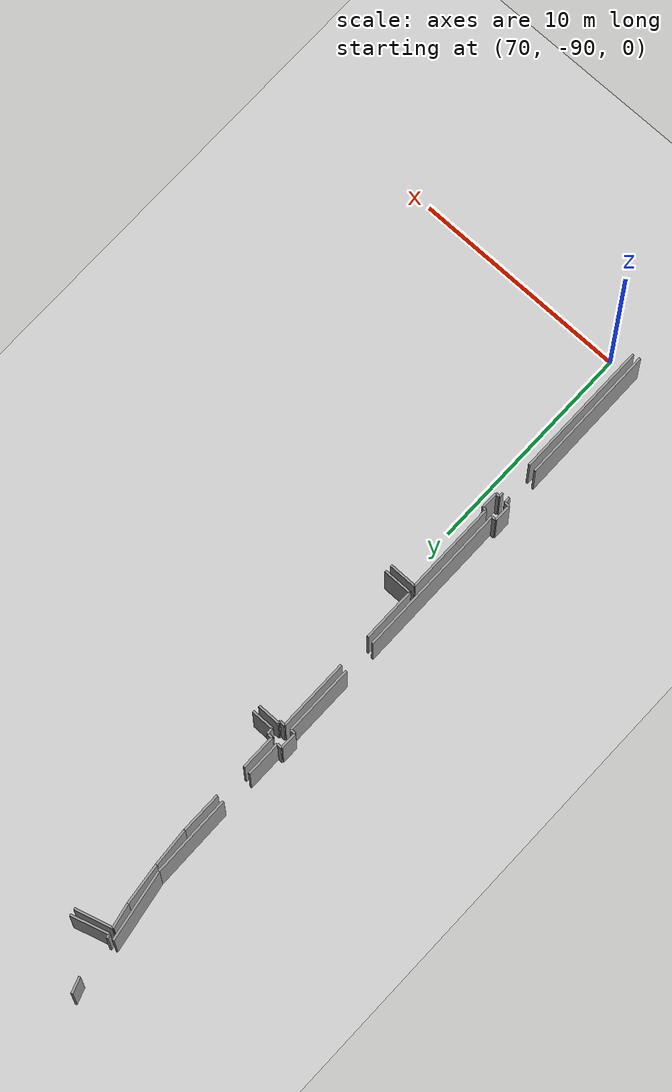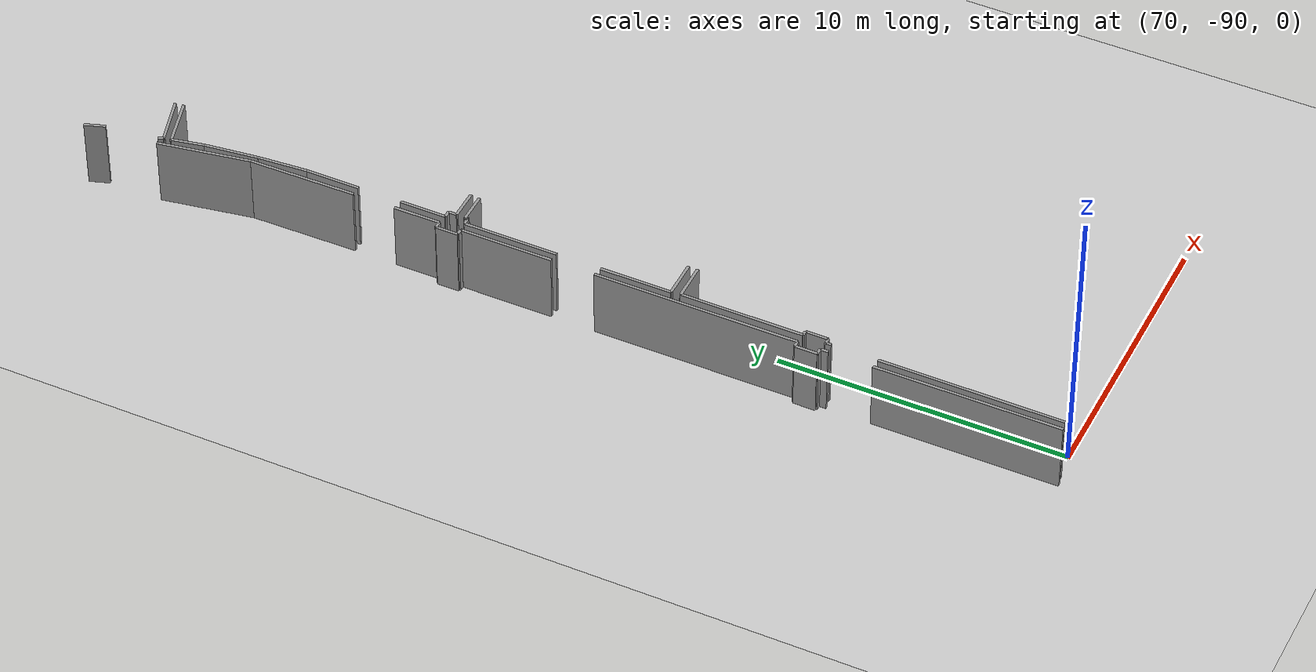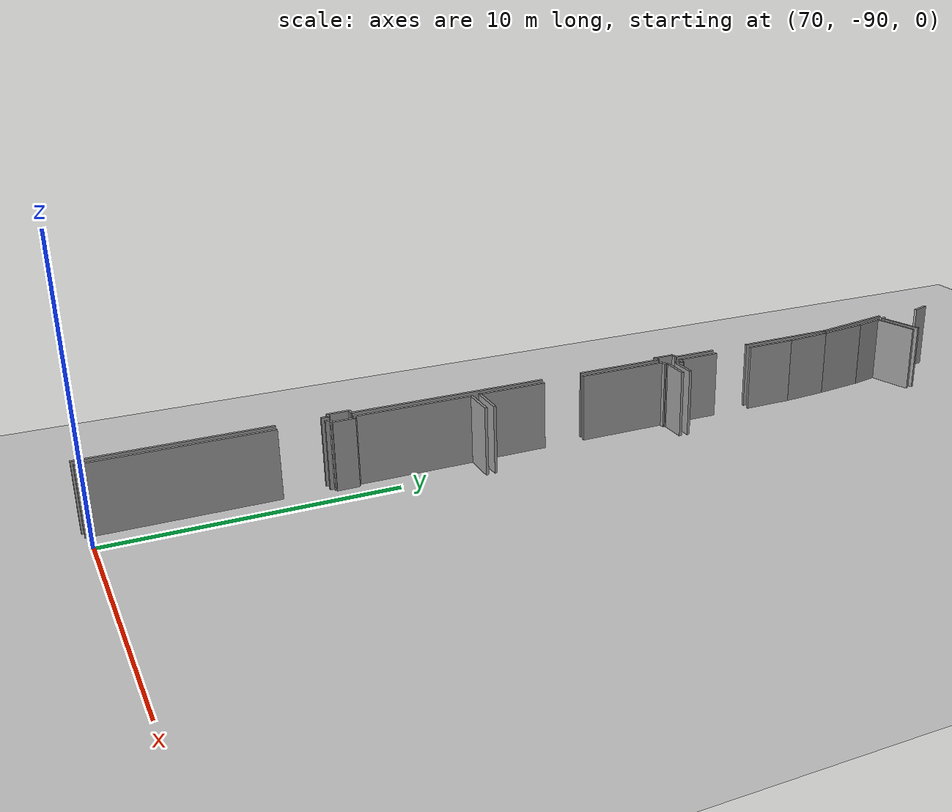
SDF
<sdf version="1.6">
 <world name="default">
  <model name="ground_plane">
   <static>1</static>
   <link name="link">
    <collision name="collision">
     <geometry><plane><normal>0 0 1</normal><size>100 100</size></plane></geometry>
     <surface><friction><ode><mu>100</mu><mu2>50</mu2></ode></friction></surface>
    </collision>
    <visual name="visual">
     <cast_shadows>0</cast_shadows>
     <geometry><plane><normal>0 0 1</normal><size>100 100</size></plane></geometry>
     <material>
      <script><uri>file://media/materials/scripts/gazebo.material</uri><name>Gazebo/Grey</name></script>
     </material>
    </visual>
   </link>
  </model>
  <model name="0510045926_A-40">
   <static>1</static>
   <link name="Wall_2115">
    <collision name="Wall_2115_Collision">
     <geometry><box><size>1.71210458438 0.1 2.5</size></box></geometry>
     <pose>0.856052292188 0 1.25 0 0 0</pose>
    </collision>
    <visual name="Wall_2115_Visual">
     <pose>0.856052292188 0 1.25 0 0 0</pose>
     <geometry><box><size>1.71210458438 0.1 2.5</size></box></geometry>
     <material>
      <script><uri>file://media/materials/scripts/gazebo.material</uri><name>Gazebo/Grey</name></script>
      <ambient>1 1 1 1</ambient>
     </material>
    </visual>
    <pose>204.050969965 -159.241593319 0 0 0 -2.85665398657</pose>
   </link>
   <link name="Wall_2116">
    <collision name="Wall_2116_Collision">
     <geometry><box><size>0.194159656876 0.1 2.5</size></box></geometry>
     <pose>0.097079828438 0 1.25 0 0 0</pose>
    </collision>
    <visual name="Wall_2116_Visual">
     <pose>0.097079828438 0 1.25 0 0 0</pose>
     <geometry><box><size>0.194159656876 0.1 2.5</size></box></geometry>
     <material>
      <script><uri>file://media/materials/scripts/gazebo.material</uri><name>Gazebo/Grey</name></script>
      <ambient>1 1 1 1</ambient>
     </material>
    </visual>
    <pose>202.407899329 -159.722863507 0 0 0 1.91900885842</pose>
   </link>
   <link name="Wall_2119">
    <collision name="Wall_2119_Collision">
     <geometry><box><size>0.730550339083 0.1 2.5</size></box></geometry>
     <pose>0.365275169542 0 1.25 0 0 0</pose>
    </collision>
    <visual name="Wall_2119_Visual">
     <pose>0.365275169542 0 1.25 0 0 0</pose>
     <geometry><box><size>0.730550339083 0.1 2.5</size></box></geometry>
     <material>
      <script><uri>file://media/materials/scripts/gazebo.material</uri><name>Gazebo/Grey</name></script>
      <ambient>1 1 1 1</ambient>
     </material>
    </visual>
    <pose>202.098728924 -157.730770451 0 0 0 1.89946908685</pose>
   </link>
   <link name="Wall_2136">
    <collision name="Wall_2136_Collision">
     <geometry><box><size>1.0290450112 0.1 2.5</size></box></geometry>
     <pose>0.5145225056 0 1.25 0 0 0</pose>
    </collision>
    <visual name="Wall_2136_Visual">
     <pose>0.5145225056 0 1.25 0 0 0</pose>
     <geometry><box><size>1.0290450112 0.1 2.5</size></box></geometry>
     <material>
      <script><uri>file://media/materials/scripts/gazebo.material</uri><name>Gazebo/Grey</name></script>
      <ambient>1 1 1 1</ambient>
     </material>
    </visual>
    <pose>204.316480839 -170.009252267 0 0 0 3.14159265359</pose>
   </link>
   <link name="Wall_2137">
    <collision name="Wall_2137_Collision">
     <geometry><box><size>0.287340639536 0.1 2.5</size></box></geometry>
     <pose>0.143670319768 0 1.25 0 0 0</pose>
    </collision>
    <visual name="Wall_2137_Visual">
     <pose>0.143670319768 0 1.25 0 0 0</pose>
     <geometry><box><size>0.287340639536 0.1 2.5</size></box></geometry>
     <material>
      <script><uri>file://media/materials/scripts/gazebo.material</uri><name>Gazebo/Grey</name></script>
      <ambient>1 1 1 1</ambient>
     </material>
    </visual>
    <pose>203.287435827 -170.009252267 0 0 0 1.57079632679</pose>
   </link>
   <link name="Wall_2138">
    <collision name="Wall_2138_Collision">
     <geometry><box><size>0.240635093887 0.1 2.5</size></box></geometry>
     <pose>0.120317546944 0 1.25 0 0 0</pose>
    </collision>
    <visual name="Wall_2138_Visual">
     <pose>0.120317546944 0 1.25 0 0 0</pose>
     <geometry><box><size>0.240635093887 0.1 2.5</size></box></geometry>
     <material>
      <script><uri>file://media/materials/scripts/gazebo.material</uri><name>Gazebo/Grey</name></script>
      <ambient>1 1 1 1</ambient>
     </material>
    </visual>
    <pose>203.287435827 -169.721911628 0 0 0 3.14159265359</pose>
   </link>
   <link name="Wall_2139">
    <collision name="Wall_2139_Collision">
     <geometry><box><size>1.61819485604 0.1 2.5</size></box></geometry>
     <pose>0.809097428022 0 1.25 0 0 0</pose>
    </collision>
    <visual name="Wall_2139_Visual">
     <pose>0.809097428022 0 1.25 0 0 0</pose>
     <geometry><box><size>1.61819485604 0.1 2.5</size></box></geometry>
     <material>
      <script><uri>file://media/materials/scripts/gazebo.material</uri><name>Gazebo/Grey</name></script>
      <ambient>1 1 1 1</ambient>
     </material>
    </visual>
    <pose>203.046800734 -169.721911628 0 0 0 1.57079632679</pose>
   </link>
   <link name="Wall_2140">
    <collision name="Wall_2140_Collision">
     <geometry><box><size>1.87964437788 0.1 2.5</size></box></geometry>
     <pose>0.939822188942 0 1.25 0 0 0</pose>
    </collision>
    <visual name="Wall_2140_Visual">
     <pose>0.939822188942 0 1.25 0 0 0</pose>
     <geometry><box><size>1.87964437788 0.1 2.5</size></box></geometry>
     <material>
      <script><uri>file://media/materials/scripts/gazebo.material</uri><name>Gazebo/Grey</name></script>
      <ambient>1 1 1 1</ambient>
     </material>
    </visual>
    <pose>203.046800734 -166.5700488 0 0 0 1.57079632679</pose>
   </link>
   <link name="Wall_2141">
    <collision name="Wall_2141_Collision">
     <geometry><box><size>1.73860062575 0.1 2.5</size></box></geometry>
     <pose>0.869300312873 0 1.25 0 0 0</pose>
    </collision>
    <visual name="Wall_2141_Visual">
     <pose>0.869300312873 0 1.25 0 0 0</pose>
     <geometry><box><size>1.73860062575 0.1 2.5</size></box></geometry>
     <material>
      <script><uri>file://media/materials/scripts/gazebo.material</uri><name>Gazebo/Grey</name></script>
      <ambient>1 1 1 1</ambient>
     </material>
    </visual>
    <pose>203.046800734 -164.690404422 0 0 0 1.64400736238</pose>
   </link>
   <link name="Wall_2142">
    <collision name="Wall_2142_Collision">
     <geometry><box><size>1.89069914068 0.1 2.5</size></box></geometry>
     <pose>0.945349570341 0 1.25 0 0 0</pose>
    </collision>
    <visual name="Wall_2142_Visual">
     <pose>0.945349570341 0 1.25 0 0 0</pose>
     <geometry><box><size>1.89069914068 0.1 2.5</size></box></geometry>
     <material>
      <script><uri>file://media/materials/scripts/gazebo.material</uri><name>Gazebo/Grey</name></script>
      <ambient>1 1 1 1</ambient>
     </material>
    </visual>
    <pose>202.919629655 -162.95646104 0 0 0 1.69300318637</pose>
   </link>
   <link name="Wall_2143">
    <collision name="Wall_2143_Collision">
     <geometry><box><size>1.12371492541 0.1 2.5</size></box></geometry>
     <pose>0.561857462706 0 1.25 0 0 0</pose>
    </collision>
    <visual name="Wall_2143_Visual">
     <pose>0.561857462706 0 1.25 0 0 0</pose>
     <geometry><box><size>1.12371492541 0.1 2.5</size></box></geometry>
     <material>
      <script><uri>file://media/materials/scripts/gazebo.material</uri><name>Gazebo/Grey</name></script>
      <ambient>1 1 1 1</ambient>
     </material>
    </visual>
    <pose>202.689147941 -161.079862676 0 0 0 1.77829255323</pose>
   </link>
   <link name="Wall_2144">
    <collision name="Wall_2144_Collision">
     <geometry><box><size>1.70312320024 0.1 2.5</size></box></geometry>
     <pose>0.85156160012 0 1.25 0 0 0</pose>
    </collision>
    <visual name="Wall_2144_Visual">
     <pose>0.85156160012 0 1.25 0 0 0</pose>
     <geometry><box><size>1.70312320024 0.1 2.5</size></box></geometry>
     <material>
      <script><uri>file://media/materials/scripts/gazebo.material</uri><name>Gazebo/Grey</name></script>
      <ambient>1 1 1 1</ambient>
     </material>
    </visual>
    <pose>202.457650889 -159.980251677 0 0 0 0.266343551223</pose>
   </link>
   <link name="Wall_2153">
    <collision name="Wall_2153_Collision">
     <geometry><box><size>1.29988640907 0.1 2.5</size></box></geometry>
     <pose>0.649943204533 0 1.25 0 0 0</pose>
    </collision>
    <visual name="Wall_2153_Visual">
     <pose>0.649943204533 0 1.25 0 0 0</pose>
     <geometry><box><size>1.29988640907 0.1 2.5</size></box></geometry>
     <material>
      <script><uri>file://media/materials/scripts/gazebo.material</uri><name>Gazebo/Grey</name></script>
      <ambient>1 1 1 1</ambient>
     </material>
    </visual>
    <pose>204.317750011 -177.771257052 0 0 0 3.14159265359</pose>
   </link>
   <link name="Wall_2154">
    <collision name="Wall_2154_Collision">
     <geometry><box><size>2.4832627885 0.1 2.5</size></box></geometry>
     <pose>1.24163139425 0 1.25 0 0 0</pose>
    </collision>
    <visual name="Wall_2154_Visual">
     <pose>1.24163139425 0 1.25 0 0 0</pose>
     <geometry><box><size>2.4832627885 0.1 2.5</size></box></geometry>
     <material>
      <script><uri>file://media/materials/scripts/gazebo.material</uri><name>Gazebo/Grey</name></script>
      <ambient>1 1 1 1</ambient>
     </material>
    </visual>
    <pose>203.017863602 -177.771257052 0 0 0 1.57079632679</pose>
   </link>
   <link name="Wall_2155">
    <collision name="Wall_2155_Collision">
     <geometry><box><size>3.30517885813 0.1 2.5</size></box></geometry>
     <pose>1.65258942906 0 1.25 0 0 0</pose>
    </collision>
    <visual name="Wall_2155_Visual">
     <pose>1.65258942906 0 1.25 0 0 0</pose>
     <geometry><box><size>3.30517885813 0.1 2.5</size></box></geometry>
     <material>
      <script><uri>file://media/materials/scripts/gazebo.material</uri><name>Gazebo/Grey</name></script>
      <ambient>1 1 1 1</ambient>
     </material>
    </visual>
    <pose>203.017863602 -173.734273367 0 0 0 1.57079632679</pose>
   </link>
   <link name="Wall_2156">
    <collision name="Wall_2156_Collision">
     <geometry><box><size>0.239873590425 0.1 2.5</size></box></geometry>
     <pose>0.119936795213 0 1.25 0 0 0</pose>
    </collision>
    <visual name="Wall_2156_Visual">
     <pose>0.119936795213 0 1.25 0 0 0</pose>
     <geometry><box><size>0.239873590425 0.1 2.5</size></box></geometry>
     <material>
      <script><uri>file://media/materials/scripts/gazebo.material</uri><name>Gazebo/Grey</name></script>
      <ambient>1 1 1 1</ambient>
     </material>
    </visual>
    <pose>203.017863602 -170.429094509 0 0 0 0.0</pose>
   </link>
   <link name="Wall_2157">
    <collision name="Wall_2157_Collision">
     <geometry><box><size>0.100772291427 0.1 2.5</size></box></geometry>
     <pose>0.0503861457137 0 1.25 0 0 0</pose>
    </collision>
    <visual name="Wall_2157_Visual">
     <pose>0.0503861457137 0 1.25 0 0 0</pose>
     <geometry><box><size>0.100772291427 0.1 2.5</size></box></geometry>
     <material>
      <script><uri>file://media/materials/scripts/gazebo.material</uri><name>Gazebo/Grey</name></script>
      <ambient>1 1 1 1</ambient>
     </material>
    </visual>
    <pose>203.257737192 -170.429094509 0 0 0 1.57079632679</pose>
   </link>
   <link name="Wall_2158">
    <collision name="Wall_2158_Collision">
     <geometry><box><size>1.03488320441 0.1 2.5</size></box></geometry>
     <pose>0.517441602203 0 1.25 0 0 0</pose>
    </collision>
    <visual name="Wall_2158_Visual">
     <pose>0.517441602203 0 1.25 0 0 0</pose>
     <geometry><box><size>1.03488320441 0.1 2.5</size></box></geometry>
     <material>
      <script><uri>file://media/materials/scripts/gazebo.material</uri><name>Gazebo/Grey</name></script>
      <ambient>1 1 1 1</ambient>
     </material>
    </visual>
    <pose>203.257737192 -170.328322217 0 0 0 0.0</pose>
   </link>
   <link name="Wall_2165">
    <collision name="Wall_2165_Collision">
     <geometry><box><size>6.32377858018 0.1 2.5</size></box></geometry>
     <pose>3.16188929009 0 1.25 0 0 0</pose>
    </collision>
    <visual name="Wall_2165_Visual">
     <pose>3.16188929009 0 1.25 0 0 0</pose>
     <geometry><box><size>6.32377858018 0.1 2.5</size></box></geometry>
     <material>
      <script><uri>file://media/materials/scripts/gazebo.material</uri><name>Gazebo/Grey</name></script>
      <ambient>1 1 1 1</ambient>
     </material>
    </visual>
    <pose>203.040454871 -191.247329978 0 0 0 1.57079632679</pose>
   </link>
   <link name="Wall_2166">
    <collision name="Wall_2166_Collision">
     <geometry><box><size>0.189868196443 0.1 2.5</size></box></geometry>
     <pose>0.0949340982213 0 1.25 0 0 0</pose>
    </collision>
    <visual name="Wall_2166_Visual">
     <pose>0.0949340982213 0 1.25 0 0 0</pose>
     <geometry><box><size>0.189868196443 0.1 2.5</size></box></geometry>
     <material>
      <script><uri>file://media/materials/scripts/gazebo.material</uri><name>Gazebo/Grey</name></script>
      <ambient>1 1 1 1</ambient>
     </material>
    </visual>
    <pose>203.040454871 -183.326932474 0 0 0 1.57079632679</pose>
   </link>
   <link name="Wall_2167">
    <collision name="Wall_2167_Collision">
     <geometry><box><size>0.189360527468 0.1 2.5</size></box></geometry>
     <pose>0.094680263734 0 1.25 0 0 0</pose>
    </collision>
    <visual name="Wall_2167_Visual">
     <pose>0.094680263734 0 1.25 0 0 0</pose>
     <geometry><box><size>0.189360527468 0.1 2.5</size></box></geometry>
     <material>
      <script><uri>file://media/materials/scripts/gazebo.material</uri><name>Gazebo/Grey</name></script>
      <ambient>1 1 1 1</ambient>
     </material>
    </visual>
    <pose>203.040454871 -183.137064277 0 0 0 0.0</pose>
   </link>
   <link name="Wall_2168">
    <collision name="Wall_2168_Collision">
     <geometry><box><size>0.791963600135 0.1 2.5</size></box></geometry>
     <pose>0.395981800067 0 1.25 0 0 0</pose>
    </collision>
    <visual name="Wall_2168_Visual">
     <pose>0.395981800067 0 1.25 0 0 0</pose>
     <geometry><box><size>0.791963600135 0.1 2.5</size></box></geometry>
     <material>
      <script><uri>file://media/materials/scripts/gazebo.material</uri><name>Gazebo/Grey</name></script>
      <ambient>1 1 1 1</ambient>
     </material>
    </visual>
    <pose>203.229815399 -183.137064277 0 0 0 1.57079632679</pose>
   </link>
   <link name="Wall_2169">
    <collision name="Wall_2169_Collision">
     <geometry><box><size>0.17184594785 0.1 2.5</size></box></geometry>
     <pose>0.0859229739249 0 1.25 0 0 0</pose>
    </collision>
    <visual name="Wall_2169_Visual">
     <pose>0.0859229739249 0 1.25 0 0 0</pose>
     <geometry><box><size>0.17184594785 0.1 2.5</size></box></geometry>
     <material>
      <script><uri>file://media/materials/scripts/gazebo.material</uri><name>Gazebo/Grey</name></script>
      <ambient>1 1 1 1</ambient>
     </material>
    </visual>
    <pose>203.229815399 -182.345100677 0 0 0 3.14159265359</pose>
   </link>
   <link name="Wall_2170">
    <collision name="Wall_2170_Collision">
     <geometry><box><size>4.25071232303 0.1 2.5</size></box></geometry>
     <pose>2.12535616151 0 1.25 0 0 0</pose>
    </collision>
    <visual name="Wall_2170_Visual">
     <pose>2.12535616151 0 1.25 0 0 0</pose>
     <geometry><box><size>4.25071232303 0.1 2.5</size></box></geometry>
     <material>
      <script><uri>file://media/materials/scripts/gazebo.material</uri><name>Gazebo/Grey</name></script>
      <ambient>1 1 1 1</ambient>
     </material>
    </visual>
    <pose>203.057969451 -182.345100677 0 0 0 1.57079632679</pose>
   </link>
   <link name="Wall_2171">
    <collision name="Wall_2171_Collision">
     <geometry><box><size>1.25800371868 0.1 2.5</size></box></geometry>
     <pose>0.629001859338 0 1.25 0 0 0</pose>
    </collision>
    <visual name="Wall_2171_Visual">
     <pose>0.629001859338 0 1.25 0 0 0</pose>
     <geometry><box><size>1.25800371868 0.1 2.5</size></box></geometry>
     <material>
      <script><uri>file://media/materials/scripts/gazebo.material</uri><name>Gazebo/Grey</name></script>
      <ambient>1 1 1 1</ambient>
     </material>
    </visual>
    <pose>203.057969451 -178.094388354 0 0 0 0.0</pose>
   </link>
   <link name="Wall_2212">
    <collision name="Wall_2212_Collision">
     <geometry><box><size>3.23390518207 0.1 2.5</size></box></geometry>
     <pose>1.61695259104 0 1.25 0 0 0</pose>
    </collision>
    <visual name="Wall_2212_Visual">
     <pose>1.61695259104 0 1.25 0 0 0</pose>
     <geometry><box><size>3.23390518207 0.1 2.5</size></box></geometry>
     <material>
      <script><uri>file://media/materials/scripts/gazebo.material</uri><name>Gazebo/Grey</name></script>
      <ambient>1 1 1 1</ambient>
     </material>
    </visual>
    <pose>202.113451324 -159.633767602 0 0 0 -1.39732450915</pose>
   </link>
   <link name="Wall_2213">
    <collision name="Wall_2213_Collision">
     <geometry><box><size>3.73645690405 0.1 2.5</size></box></geometry>
     <pose>1.86822845203 0 1.25 0 0 0</pose>
    </collision>
    <visual name="Wall_2213_Visual">
     <pose>1.86822845203 0 1.25 0 0 0</pose>
     <geometry><box><size>3.73645690405 0.1 2.5</size></box></geometry>
     <material>
      <script><uri>file://media/materials/scripts/gazebo.material</uri><name>Gazebo/Grey</name></script>
      <ambient>1 1 1 1</ambient>
     </material>
    </visual>
    <pose>202.671633361 -162.819136582 0 0 0 -1.55883956257</pose>
   </link>
   <link name="Wall_2214">
    <collision name="Wall_2214_Collision">
     <geometry><box><size>1.63012507694 0.1 2.5</size></box></geometry>
     <pose>0.815062538472 0 1.25 0 0 0</pose>
    </collision>
    <visual name="Wall_2214_Visual">
     <pose>0.815062538472 0 1.25 0 0 0</pose>
     <geometry><box><size>1.63012507694 0.1 2.5</size></box></geometry>
     <material>
      <script><uri>file://media/materials/scripts/gazebo.material</uri><name>Gazebo/Grey</name></script>
      <ambient>1 1 1 1</ambient>
     </material>
    </visual>
    <pose>202.716308231 -168.050157695 0 0 0 -1.57079632679</pose>
   </link>
   <link name="Wall_2215">
    <collision name="Wall_2215_Collision">
     <geometry><box><size>0.233781562732 0.1 2.5</size></box></geometry>
     <pose>0.116890781366 0 1.25 0 0 0</pose>
    </collision>
    <visual name="Wall_2215_Visual">
     <pose>0.116890781366 0 1.25 0 0 0</pose>
     <geometry><box><size>0.233781562732 0.1 2.5</size></box></geometry>
     <material>
      <script><uri>file://media/materials/scripts/gazebo.material</uri><name>Gazebo/Grey</name></script>
      <ambient>1 1 1 1</ambient>
     </material>
    </visual>
    <pose>202.716308231 -169.680282772 0 0 0 3.14159265359</pose>
   </link>
   <link name="Wall_2216">
    <collision name="Wall_2216_Collision">
     <geometry><box><size>0.771910675644 0.1 2.5</size></box></geometry>
     <pose>0.385955337822 0 1.25 0 0 0</pose>
    </collision>
    <visual name="Wall_2216_Visual">
     <pose>0.385955337822 0 1.25 0 0 0</pose>
     <geometry><box><size>0.771910675644 0.1 2.5</size></box></geometry>
     <material>
      <script><uri>file://media/materials/scripts/gazebo.material</uri><name>Gazebo/Grey</name></script>
      <ambient>1 1 1 1</ambient>
     </material>
    </visual>
    <pose>202.482526668 -169.680282772 0 0 0 -1.57079632679</pose>
   </link>
   <link name="Wall_2217">
    <collision name="Wall_2217_Collision">
     <geometry><box><size>0.224135852218 0.1 2.5</size></box></geometry>
     <pose>0.112067926109 0 1.25 0 0 0</pose>
    </collision>
    <visual name="Wall_2217_Visual">
     <pose>0.112067926109 0 1.25 0 0 0</pose>
     <geometry><box><size>0.224135852218 0.1 2.5</size></box></geometry>
     <material>
      <script><uri>file://media/materials/scripts/gazebo.material</uri><name>Gazebo/Grey</name></script>
      <ambient>1 1 1 1</ambient>
     </material>
    </visual>
    <pose>202.482526668 -170.452193447 0 0 0 0.0</pose>
   </link>
   <link name="Wall_2218">
    <collision name="Wall_2218_Collision">
     <geometry><box><size>3.23765888452 0.1 2.5</size></box></geometry>
     <pose>1.61882944226 0 1.25 0 0 0</pose>
    </collision>
    <visual name="Wall_2218_Visual">
     <pose>1.61882944226 0 1.25 0 0 0</pose>
     <geometry><box><size>3.23765888452 0.1 2.5</size></box></geometry>
     <material>
      <script><uri>file://media/materials/scripts/gazebo.material</uri><name>Gazebo/Grey</name></script>
      <ambient>1 1 1 1</ambient>
     </material>
    </visual>
    <pose>202.706662521 -170.452193447 0 0 0 -1.57079632679</pose>
   </link>
   <link name="Wall_2219">
    <collision name="Wall_2219_Collision">
     <geometry><box><size>7.09949677313 0.1 2.5</size></box></geometry>
     <pose>3.54974838656 0 1.25 0 0 0</pose>
    </collision>
    <visual name="Wall_2219_Visual">
     <pose>3.54974838656 0 1.25 0 0 0</pose>
     <geometry><box><size>7.09949677313 0.1 2.5</size></box></geometry>
     <material>
      <script><uri>file://media/materials/scripts/gazebo.material</uri><name>Gazebo/Grey</name></script>
      <ambient>1 1 1 1</ambient>
     </material>
    </visual>
    <pose>202.706662521 -175.215143766 0 0 0 -1.57079632679</pose>
   </link>
   <link name="Wall_2220">
    <collision name="Wall_2220_Collision">
     <geometry><box><size>0.214997810678 0.1 2.5</size></box></geometry>
     <pose>0.107498905339 0 1.25 0 0 0</pose>
    </collision>
    <visual name="Wall_2220_Visual">
     <pose>0.107498905339 0 1.25 0 0 0</pose>
     <geometry><box><size>0.214997810678 0.1 2.5</size></box></geometry>
     <material>
      <script><uri>file://media/materials/scripts/gazebo.material</uri><name>Gazebo/Grey</name></script>
      <ambient>1 1 1 1</ambient>
     </material>
    </visual>
    <pose>202.706662521 -182.314640539 0 0 0 3.14159265359</pose>
   </link>
   <link name="Wall_2221">
    <collision name="Wall_2221_Collision">
     <geometry><box><size>0.779018041286 0.1 2.5</size></box></geometry>
     <pose>0.389509020643 0 1.25 0 0 0</pose>
    </collision>
    <visual name="Wall_2221_Visual">
     <pose>0.389509020643 0 1.25 0 0 0</pose>
     <geometry><box><size>0.779018041286 0.1 2.5</size></box></geometry>
     <material>
      <script><uri>file://media/materials/scripts/gazebo.material</uri><name>Gazebo/Grey</name></script>
      <ambient>1 1 1 1</ambient>
     </material>
    </visual>
    <pose>202.49166471 -182.314640539 0 0 0 -1.57079632679</pose>
   </link>
   <link name="Wall_2222">
    <collision name="Wall_2222_Collision">
     <geometry><box><size>0.219566831448 0.1 2.5</size></box></geometry>
     <pose>0.109783415724 0 1.25 0 0 0</pose>
    </collision>
    <visual name="Wall_2222_Visual">
     <pose>0.109783415724 0 1.25 0 0 0</pose>
     <geometry><box><size>0.219566831448 0.1 2.5</size></box></geometry>
     <material>
      <script><uri>file://media/materials/scripts/gazebo.material</uri><name>Gazebo/Grey</name></script>
      <ambient>1 1 1 1</ambient>
     </material>
    </visual>
    <pose>202.49166471 -183.09365858 0 0 0 0.0</pose>
   </link>
   <link name="Wall_2223">
    <collision name="Wall_2223_Collision">
     <geometry><box><size>0.274395080688 0.1 2.5</size></box></geometry>
     <pose>0.137197540344 0 1.25 0 0 0</pose>
    </collision>
    <visual name="Wall_2223_Visual">
     <pose>0.137197540344 0 1.25 0 0 0</pose>
     <geometry><box><size>0.274395080688 0.1 2.5</size></box></geometry>
     <material>
      <script><uri>file://media/materials/scripts/gazebo.material</uri><name>Gazebo/Grey</name></script>
      <ambient>1 1 1 1</ambient>
     </material>
    </visual>
    <pose>202.711231541 -183.09365858 0 0 0 -1.57079632679</pose>
   </link>
   <link name="Wall_2224">
    <collision name="Wall_2224_Collision">
     <geometry><box><size>6.41976513142 0.1 2.5</size></box></geometry>
     <pose>3.20988256571 0 1.25 0 0 0</pose>
    </collision>
    <visual name="Wall_2224_Visual">
     <pose>3.20988256571 0 1.25 0 0 0</pose>
     <geometry><box><size>6.41976513142 0.1 2.5</size></box></geometry>
     <material>
      <script><uri>file://media/materials/scripts/gazebo.material</uri><name>Gazebo/Grey</name></script>
      <ambient>1 1 1 1</ambient>
     </material>
    </visual>
    <pose>202.711231541 -184.893345094 0 0 0 -1.56739592078</pose>
   </link>
   <pose>-133.95 101.113233661 0 0 0 0</pose>
  </model>
 </world>
</sdf>
